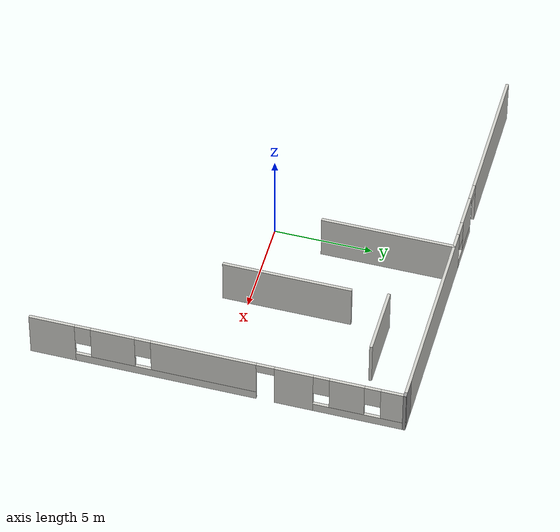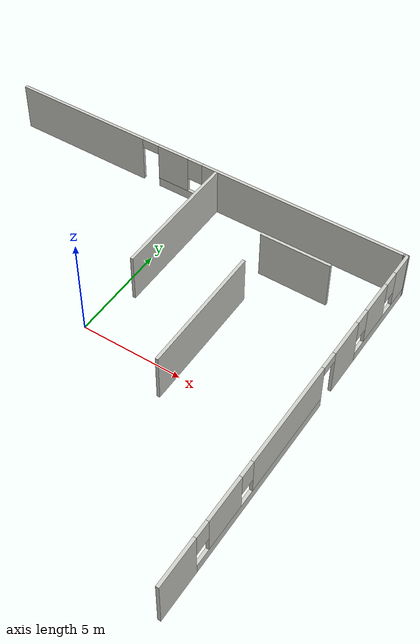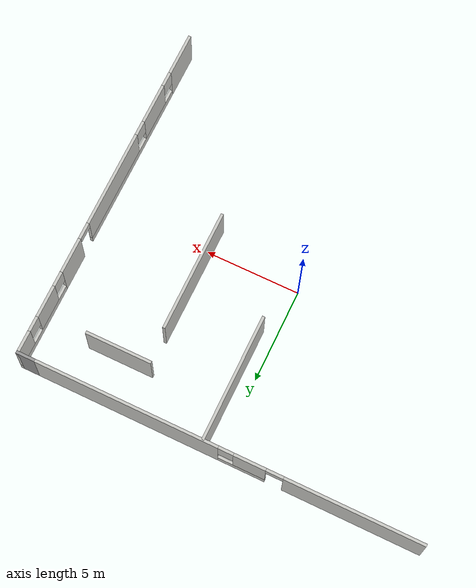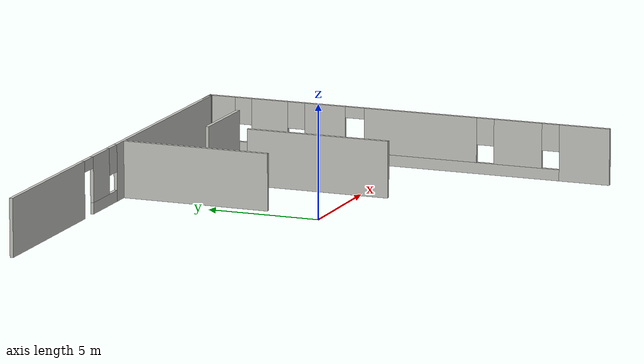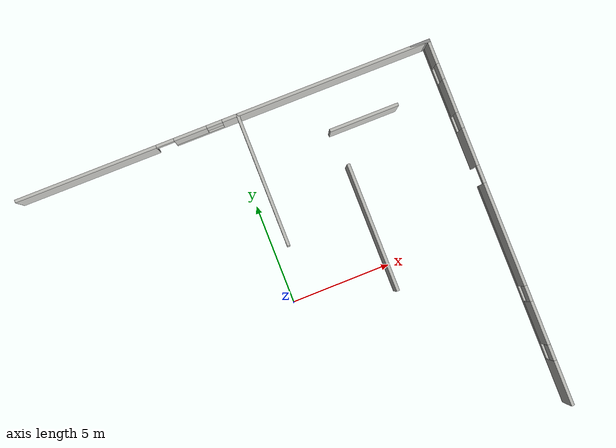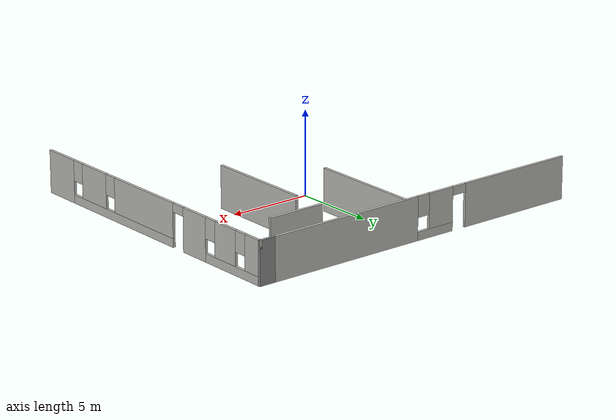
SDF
<sdf version="1.7">
 <model name="training_area">
  <link name="Wall_28">
   <pose>0.758252 5.97196 0 0 0 -1.5708</pose>
   <inertial>
    <mass>1</mass>
    <inertia><ixx>1</ixx><ixy>0</ixy><ixz>0</ixz><iyy>1</iyy><iyz>0</iyz><izz>1</izz></inertia>
   </inertial>
   <visual name="Wall_28_Visual">
    <pose>0 0 1.25 0 -0 0</pose>
    <geometry><box><size>6.75 0.15 2.5</size></box></geometry>
    <material>
     <script><uri>file://media/materials/scripts/gazebo.material</uri><name>Gazebo/CeilingTiled</name></script>
     <ambient>0.135 0.396 0.9 1</ambient>
     <shader type="pixel"><normal_map>__default__</normal_map></shader>
     <diffuse>1 1 1 1</diffuse>
     <specular>0 0 0 1</specular>
     <emissive>0 0 0 1</emissive>
    </material>
    <meta><layer>0</layer></meta>
   </visual>
   <collision name="Wall_28_Collision">
    <pose>0 0 1.25 0 -0 0</pose>
    <geometry><box><size>6.75 0.15 2.5</size></box></geometry>
    <surface>
     <friction>
      <ode><mu>1</mu><mu2>1</mu2><fdir1>0 0 0</fdir1><slip1>0</slip1><slip2>0</slip2></ode>
      <torsional>
       <coefficient>1</coefficient>
       <patch_radius>0</patch_radius>
       <surface_radius>0</surface_radius>
       <use_patch_radius>1</use_patch_radius>
       <ode><slip>0</slip></ode>
      </torsional>
     </friction>
     <bounce><restitution_coefficient>0</restitution_coefficient><threshold>1e+06</threshold></bounce>
     <contact>
      <collide_without_contact>0</collide_without_contact>
      <collide_without_contact_bitmask>1</collide_without_contact_bitmask>
      <collide_bitmask>1</collide_bitmask>
      <ode>
       <soft_cfm>0</soft_cfm>
       <soft_erp>0.2</soft_erp>
       <kp>1e+13</kp>
       <kd>1</kd>
       <max_vel>0.01</max_vel>
       <min_depth>0</min_depth>
      </ode>
      <bullet>
       <split_impulse>1</split_impulse>
       <split_impulse_penetration_threshold>-0.01</split_impulse_penetration_threshold>
       <soft_cfm>0</soft_cfm>
       <soft_erp>0.2</soft_erp>
       <kp>1e+13</kp>
       <kd>1</kd>
      </bullet>
     </contact>
    </surface>
   </collision>
  </link>
  <link name="Wall_3">
   <pose>-0.13 9.3 0 0 -0 3.14159</pose>
   <inertial>
    <mass>1</mass>
    <inertia><ixx>1</ixx><ixy>0</ixy><ixz>0</ixz><iyy>1</iyy><iyz>0</iyz><izz>1</izz></inertia>
   </inertial>
   <visual name="Wall_3_Visual_0">
    <pose>-5.29204 0 1.25 0 -0 0</pose>
    <geometry><box><size>10.4159 0.15 2.5</size></box></geometry>
    <material>
     <script><uri>file://media/materials/scripts/gazebo.material</uri><name>Gazebo/CeilingTiled</name></script>
     <ambient>0.8 0.965 0.106 1</ambient>
     <shader type="pixel"><normal_map>__default__</normal_map></shader>
     <diffuse>1 1 1 1</diffuse>
     <specular>0 0 0 1</specular>
     <emissive>0 0 0 1</emissive>
    </material>
    <meta><layer>0</layer></meta>
   </visual>
   <visual name="Wall_3_Visual_1">
    <pose>6.89421 0 1.25 0 -0 0</pose>
    <geometry><box><size>7.21159 0.15 2.5</size></box></geometry>
    <material>
     <script><uri>file://media/materials/scripts/gazebo.material</uri><name>Gazebo/CeilingTiled</name></script>
     <ambient>0.6 0.965 0.206 1</ambient>
     <shader type="pixel"><normal_map>__default__</normal_map></shader>
     <diffuse>1 1 1 1</diffuse>
     <specular>0 0 0 1</specular>
     <emissive>0 0 0 1</emissive>
    </material>
    <meta><layer>0</layer></meta>
   </visual>
   <visual name="Wall_3_Visual_3">
    <pose>1.55217 0 1.5 0 -0 0</pose>
    <geometry><box><size>1.67249 0.15 2</size></box></geometry>
    <material>
     <script><uri>file://media/materials/scripts/gazebo.material</uri><name>Gazebo/CeilingTiled</name></script>
     <ambient>0.3 1 0.406 1</ambient>
     <shader type="pixel"><normal_map>__default__</normal_map></shader>
     <diffuse>1 1 1 1</diffuse>
     <specular>0 0 0 1</specular>
     <emissive>0 0 0 1</emissive>
    </material>
    <meta><layer>0</layer></meta>
   </visual>
   <visual name="Wall_3_Visual_5">
    <pose>2.83841 0 2.25 0 -0 0</pose>
    <geometry><box><size>0.9 0.15 0.5</size></box></geometry>
    <material>
     <script><uri>file://media/materials/scripts/gazebo.material</uri><name>Gazebo/CeilingTiled</name></script>
     <ambient>0.8 0.965 0.606 1</ambient>
     <shader type="pixel"><normal_map>__default__</normal_map></shader>
     <diffuse>1 1 1 1</diffuse>
     <specular>0 0 0 1</specular>
     <emissive>0 0 0 1</emissive>
    </material>
    <meta><layer>0</layer></meta>
   </visual>
   <visual name="Wall_3_Visual_4">
    <pose>0.315921 0 1.9 0 -0 0</pose>
    <geometry><box><size>0.8 0.15 1.2</size></box></geometry>
    <material>
     <script><uri>file://media/materials/scripts/gazebo.material</uri><name>Gazebo/CeilingTiled</name></script>
     <ambient>0.6 0.765 0.506 1</ambient>
     <shader type="pixel"><normal_map>__default__</normal_map></shader>
     <diffuse>1 1 1 1</diffuse>
     <specular>0 0 0 1</specular>
     <emissive>0 0 0 1</emissive>
    </material>
    <meta><layer>0</layer></meta>
   </visual>
   <visual name="Wall_3_Visual_2">
    <pose>1.15217 0 0.25 0 -0 0</pose>
    <geometry><box><size>2.47249 0.15 0.5</size></box></geometry>
    <material>
     <script><uri>file://media/materials/scripts/gazebo.material</uri><name>Gazebo/CeilingTiled</name></script>
     <ambient>0.7 1 0.506 1</ambient>
     <shader type="pixel"><normal_map>__default__</normal_map></shader>
     <diffuse>1 1 1 1</diffuse>
     <specular>0 0 0 1</specular>
     <emissive>0 0 0 1</emissive>
    </material>
    <meta><layer>0</layer></meta>
   </visual>
   <collision name="Wall_3_Collision_5">
    <pose>2.83841 0 2.25 0 -0 0</pose>
    <geometry><box><size>0.9 0.15 0.5</size></box></geometry>
    <surface>
     <friction>
      <ode><mu>1</mu><mu2>1</mu2><fdir1>0 0 0</fdir1><slip1>0</slip1><slip2>0</slip2></ode>
      <torsional>
       <coefficient>1</coefficient>
       <patch_radius>0</patch_radius>
       <surface_radius>0</surface_radius>
       <use_patch_radius>1</use_patch_radius>
       <ode><slip>0</slip></ode>
      </torsional>
     </friction>
     <bounce><restitution_coefficient>0</restitution_coefficient><threshold>1e+06</threshold></bounce>
     <contact>
      <collide_without_contact>0</collide_without_contact>
      <collide_without_contact_bitmask>1</collide_without_contact_bitmask>
      <collide_bitmask>1</collide_bitmask>
      <ode>
       <soft_cfm>0</soft_cfm>
       <soft_erp>0.2</soft_erp>
       <kp>1e+13</kp>
       <kd>1</kd>
       <max_vel>0.01</max_vel>
       <min_depth>0</min_depth>
      </ode>
      <bullet>
       <split_impulse>1</split_impulse>
       <split_impulse_penetration_threshold>-0.01</split_impulse_penetration_threshold>
       <soft_cfm>0</soft_cfm>
       <soft_erp>0.2</soft_erp>
       <kp>1e+13</kp>
       <kd>1</kd>
      </bullet>
     </contact>
    </surface>
   </collision>
   <collision name="Wall_3_Collision_0">
    <pose>-5.29204 0 1.25 0 -0 0</pose>
    <geometry><box><size>10.4159 0.15 2.5</size></box></geometry>
    <surface>
     <friction>
      <ode><mu>1</mu><mu2>1</mu2><fdir1>0 0 0</fdir1><slip1>0</slip1><slip2>0</slip2></ode>
      <torsional>
       <coefficient>1</coefficient>
       <patch_radius>0</patch_radius>
       <surface_radius>0</surface_radius>
       <use_patch_radius>1</use_patch_radius>
       <ode><slip>0</slip></ode>
      </torsional>
     </friction>
     <bounce><restitution_coefficient>0</restitution_coefficient><threshold>1e+06</threshold></bounce>
     <contact>
      <collide_without_contact>0</collide_without_contact>
      <collide_without_contact_bitmask>1</collide_without_contact_bitmask>
      <collide_bitmask>1</collide_bitmask>
      <ode>
       <soft_cfm>0</soft_cfm>
       <soft_erp>0.2</soft_erp>
       <kp>1e+13</kp>
       <kd>1</kd>
       <max_vel>0.01</max_vel>
       <min_depth>0</min_depth>
      </ode>
      <bullet>
       <split_impulse>1</split_impulse>
       <split_impulse_penetration_threshold>-0.01</split_impulse_penetration_threshold>
       <soft_cfm>0</soft_cfm>
       <soft_erp>0.2</soft_erp>
       <kp>1e+13</kp>
       <kd>1</kd>
      </bullet>
     </contact>
    </surface>
   </collision>
   <collision name="Wall_3_Collision_4">
    <pose>0.315921 0 1.9 0 -0 0</pose>
    <geometry><box><size>0.8 0.15 1.2</size></box></geometry>
    <surface>
     <friction>
      <ode><mu>1</mu><mu2>1</mu2><fdir1>0 0 0</fdir1><slip1>0</slip1><slip2>0</slip2></ode>
      <torsional>
       <coefficient>1</coefficient>
       <patch_radius>0</patch_radius>
       <surface_radius>0</surface_radius>
       <use_patch_radius>1</use_patch_radius>
       <ode><slip>0</slip></ode>
      </torsional>
     </friction>
     <bounce><restitution_coefficient>0</restitution_coefficient><threshold>1e+06</threshold></bounce>
     <contact>
      <collide_without_contact>0</collide_without_contact>
      <collide_without_contact_bitmask>1</collide_without_contact_bitmask>
      <collide_bitmask>1</collide_bitmask>
      <ode>
       <soft_cfm>0</soft_cfm>
       <soft_erp>0.2</soft_erp>
       <kp>1e+13</kp>
       <kd>1</kd>
       <max_vel>0.01</max_vel>
       <min_depth>0</min_depth>
      </ode>
      <bullet>
       <split_impulse>1</split_impulse>
       <split_impulse_penetration_threshold>-0.01</split_impulse_penetration_threshold>
       <soft_cfm>0</soft_cfm>
       <soft_erp>0.2</soft_erp>
       <kp>1e+13</kp>
       <kd>1</kd>
      </bullet>
     </contact>
    </surface>
   </collision>
   <collision name="Wall_3_Collision_1">
    <pose>6.89421 0 1.25 0 -0 0</pose>
    <geometry><box><size>7.21159 0.15 2.5</size></box></geometry>
    <surface>
     <friction>
      <ode><mu>1</mu><mu2>1</mu2><fdir1>0 0 0</fdir1><slip1>0</slip1><slip2>0</slip2></ode>
      <torsional>
       <coefficient>1</coefficient>
       <patch_radius>0</patch_radius>
       <surface_radius>0</surface_radius>
       <use_patch_radius>1</use_patch_radius>
       <ode><slip>0</slip></ode>
      </torsional>
     </friction>
     <bounce><restitution_coefficient>0</restitution_coefficient><threshold>1e+06</threshold></bounce>
     <contact>
      <collide_without_contact>0</collide_without_contact>
      <collide_without_contact_bitmask>1</collide_without_contact_bitmask>
      <collide_bitmask>1</collide_bitmask>
      <ode>
       <soft_cfm>0</soft_cfm>
       <soft_erp>0.2</soft_erp>
       <kp>1e+13</kp>
       <kd>1</kd>
       <max_vel>0.01</max_vel>
       <min_depth>0</min_depth>
      </ode>
      <bullet>
       <split_impulse>1</split_impulse>
       <split_impulse_penetration_threshold>-0.01</split_impulse_penetration_threshold>
       <soft_cfm>0</soft_cfm>
       <soft_erp>0.2</soft_erp>
       <kp>1e+13</kp>
       <kd>1</kd>
      </bullet>
     </contact>
    </surface>
   </collision>
   <collision name="Wall_3_Collision_2">
    <pose>1.15217 0 0.25 0 -0 0</pose>
    <geometry><box><size>2.47249 0.15 0.5</size></box></geometry>
    <surface>
     <friction>
      <ode><mu>1</mu><mu2>1</mu2><fdir1>0 0 0</fdir1><slip1>0</slip1><slip2>0</slip2></ode>
      <torsional>
       <coefficient>1</coefficient>
       <patch_radius>0</patch_radius>
       <surface_radius>0</surface_radius>
       <use_patch_radius>1</use_patch_radius>
       <ode><slip>0</slip></ode>
      </torsional>
     </friction>
     <bounce><restitution_coefficient>0</restitution_coefficient><threshold>1e+06</threshold></bounce>
     <contact>
      <collide_without_contact>0</collide_without_contact>
      <collide_without_contact_bitmask>1</collide_without_contact_bitmask>
      <collide_bitmask>1</collide_bitmask>
      <ode>
       <soft_cfm>0</soft_cfm>
       <soft_erp>0.2</soft_erp>
       <kp>1e+13</kp>
       <kd>1</kd>
       <max_vel>0.01</max_vel>
       <min_depth>0</min_depth>
      </ode>
      <bullet>
       <split_impulse>1</split_impulse>
       <split_impulse_penetration_threshold>-0.01</split_impulse_penetration_threshold>
       <soft_cfm>0</soft_cfm>
       <soft_erp>0.2</soft_erp>
       <kp>1e+13</kp>
       <kd>1</kd>
      </bullet>
     </contact>
    </surface>
   </collision>
   <collision name="Wall_3_Collision_3">
    <pose>1.55217 0 1.5 0 -0 0</pose>
    <geometry><box><size>1.67249 0.15 2</size></box></geometry>
    <surface>
     <friction>
      <ode><mu>1</mu><mu2>1</mu2><fdir1>0 0 0</fdir1><slip1>0</slip1><slip2>0</slip2></ode>
      <torsional>
       <coefficient>1</coefficient>
       <patch_radius>0</patch_radius>
       <surface_radius>0</surface_radius>
       <use_patch_radius>1</use_patch_radius>
       <ode><slip>0</slip></ode>
      </torsional>
     </friction>
     <bounce><restitution_coefficient>0</restitution_coefficient><threshold>1e+06</threshold></bounce>
     <contact>
      <collide_without_contact>0</collide_without_contact>
      <collide_without_contact_bitmask>1</collide_without_contact_bitmask>
      <collide_bitmask>1</collide_bitmask>
      <ode>
       <soft_cfm>0</soft_cfm>
       <soft_erp>0.2</soft_erp>
       <kp>1e+13</kp>
       <kd>1</kd>
       <max_vel>0.01</max_vel>
       <min_depth>0</min_depth>
      </ode>
      <bullet>
       <split_impulse>1</split_impulse>
       <split_impulse_penetration_threshold>-0.01</split_impulse_penetration_threshold>
       <soft_cfm>0</soft_cfm>
       <soft_erp>0.2</soft_erp>
       <kp>1e+13</kp>
       <kd>1</kd>
      </bullet>
     </contact>
    </surface>
   </collision>
  </link>
  <link name="Wall_30">
   <pose>6.33904 6.99359 0 0 -0 0</pose>
   <visual name="Wall_30_Visual">
    <pose>0 0 1.25 0 -0 0</pose>
    <geometry><box><size>3.5 0.15 2.5</size></box></geometry>
    <material>
     <script><uri>file://media/materials/scripts/gazebo.material</uri><name>Gazebo/CeilingTiled</name></script>
     <ambient>0.435294 0.796078 0.67451 1</ambient>
     <shader type="pixel"/>
    </material>
    <meta><layer>0</layer></meta>
   </visual>
   <collision name="Wall_30_Collision">
    <pose>0 0 1.25 0 -0 0</pose>
    <geometry><box><size>3.5 0.15 2.5</size></box></geometry>
    <surface>
     <friction>
      <ode><mu>1</mu><mu2>1</mu2><fdir1>0 0 0</fdir1><slip1>0</slip1><slip2>0</slip2></ode>
      <torsional>
       <coefficient>1</coefficient>
       <patch_radius>0</patch_radius>
       <surface_radius>0</surface_radius>
       <use_patch_radius>1</use_patch_radius>
       <ode><slip>0</slip></ode>
      </torsional>
     </friction>
     <bounce><restitution_coefficient>0</restitution_coefficient><threshold>1e+06</threshold></bounce>
     <contact>
      <collide_without_contact>0</collide_without_contact>
      <collide_without_contact_bitmask>1</collide_without_contact_bitmask>
      <collide_bitmask>1</collide_bitmask>
      <ode>
       <soft_cfm>0</soft_cfm>
       <soft_erp>0.2</soft_erp>
       <kp>1e+13</kp>
       <kd>1</kd>
       <max_vel>0.01</max_vel>
       <min_depth>0</min_depth>
      </ode>
      <bullet>
       <split_impulse>1</split_impulse>
       <split_impulse_penetration_threshold>-0.01</split_impulse_penetration_threshold>
       <soft_cfm>0</soft_cfm>
       <soft_erp>0.2</soft_erp>
       <kp>1e+13</kp>
       <kd>1</kd>
      </bullet>
     </contact>
    </surface>
   </collision>
  </link>
  <link name="Wall_32">
   <pose>4.82678 1.94706 0 0 0 -1.5708</pose>
   <inertial>
    <mass>1</mass>
    <inertia><ixx>1</ixx><ixy>0</ixy><ixz>0</ixz><iyy>1</iyy><iyz>0</iyz><izz>1</izz></inertia>
   </inertial>
   <visual name="Wall_32_Visual">
    <pose>0 0 1.25 0 -0 0</pose>
    <geometry><box><size>6.5 0.15 2.5</size></box></geometry>
    <material>
     <script><uri>file://media/materials/scripts/gazebo.material</uri><name>Gazebo/CeilingTiled</name></script>
     <ambient>0.835 0.396 0.375 1</ambient>
     <shader type="pixel"><normal_map>__default__</normal_map></shader>
     <diffuse>1 1 1 1</diffuse>
     <specular>0 0 0 1</specular>
     <emissive>0 0 0 1</emissive>
    </material>
    <meta><layer>0</layer></meta>
   </visual>
   <collision name="Wall_32_Collision">
    <pose>0 0 1.25 0 -0 0</pose>
    <geometry><box><size>6.5 0.15 2.5</size></box></geometry>
    <surface>
     <friction>
      <ode><mu>1</mu><mu2>1</mu2><fdir1>0 0 0</fdir1><slip1>0</slip1><slip2>0</slip2></ode>
      <torsional>
       <coefficient>1</coefficient>
       <patch_radius>0</patch_radius>
       <surface_radius>0</surface_radius>
       <use_patch_radius>1</use_patch_radius>
       <ode><slip>0</slip></ode>
      </torsional>
     </friction>
     <bounce><restitution_coefficient>0</restitution_coefficient><threshold>1e+06</threshold></bounce>
     <contact>
      <collide_without_contact>0</collide_without_contact>
      <collide_without_contact_bitmask>1</collide_without_contact_bitmask>
      <collide_bitmask>1</collide_bitmask>
      <ode>
       <soft_cfm>0</soft_cfm>
       <soft_erp>0.2</soft_erp>
       <kp>1e+13</kp>
       <kd>1</kd>
       <max_vel>0.01</max_vel>
       <min_depth>0</min_depth>
      </ode>
      <bullet>
       <split_impulse>1</split_impulse>
       <split_impulse_penetration_threshold>-0.01</split_impulse_penetration_threshold>
       <soft_cfm>0</soft_cfm>
       <soft_erp>0.2</soft_erp>
       <kp>1e+13</kp>
       <kd>1</kd>
      </bullet>
     </contact>
    </surface>
   </collision>
  </link>
  <link name="Wall_7">
   <pose>10.555 0 0 0 -0 1.5708</pose>
   <inertial>
    <mass>1</mass>
    <inertia><ixx>1</ixx><ixy>0</ixy><ixz>0</ixz><iyy>1</iyy><iyz>0</iyz><izz>1</izz></inertia>
   </inertial>
   <visual name="Wall_7_Visual_2">
    <pose>-2.54492 0 0.25 0 -0 0</pose>
    <geometry><box><size>9.06351 0.15 0.5</size></box></geometry>
    <material>
     <script><uri>file://media/materials/scripts/gazebo.material</uri><name>Gazebo/CeilingTiled</name></script>
     <ambient>0.1 0.9 0.906 1</ambient>
     <shader type="pixel"><normal_map>__default__</normal_map></shader>
     <diffuse>1 1 1 1</diffuse>
     <specular>0 0 0 1</specular>
     <emissive>0 0 0 1</emissive>
    </material>
    <meta><layer>0</layer></meta>
   </visual>
   <visual name="Wall_7_Visual_12">
    <pose>7.72592 0 1.9 0 -0 0</pose>
    <geometry><box><size>0.8 0.15 1.2</size></box></geometry>
    <material>
     <script><uri>file://media/materials/scripts/gazebo.material</uri><name>Gazebo/CeilingTiled</name></script>
     <ambient>0.4 1 0.106 1</ambient>
     <shader type="pixel"><normal_map>__default__</normal_map></shader>
     <diffuse>1 1 1 1</diffuse>
     <specular>0 0 0 1</specular>
     <emissive>0 0 0 1</emissive>
    </material>
    <meta><layer>0</layer></meta>
   </visual>
   <visual name="Wall_7_Visual_11">
    <pose>-3.66596 0 1.9 0 -0 0</pose>
    <geometry><box><size>0.8 0.15 1.2</size></box></geometry>
    <material>
     <script><uri>file://media/materials/scripts/gazebo.material</uri><name>Gazebo/CeilingTiled</name></script>
     <ambient>0.5 0.465 0.106 1</ambient>
     <shader type="pixel"><normal_map>__default__</normal_map></shader>
     <diffuse>1 1 1 1</diffuse>
     <specular>0 0 0 1</specular>
     <emissive>0 0 0 1</emissive>
    </material>
    <meta><layer>0</layer></meta>
   </visual>
   <visual name="Wall_7_Visual_6">
    <pose>-0.639567 0 1.5 0 -0 0</pose>
    <geometry><box><size>5.2528 0.15 2</size></box></geometry>
    <material>
     <script><uri>file://media/materials/scripts/gazebo.material</uri><name>Gazebo/CeilingTiled</name></script>
     <ambient>0.2 0.765 0.206 1</ambient>
     <shader type="pixel"><normal_map>__default__</normal_map></shader>
     <diffuse>1 1 1 1</diffuse>
     <specular>0 0 0 1</specular>
     <emissive>0 0 0 1</emissive>
    </material>
    <meta><layer>0</layer></meta>
   </visual>
   <visual name="Wall_7_Visual_1">
    <pose>3.84513 0 1.25 0 -0 0</pose>
    <geometry><box><size>1.9166 0.15 2.5</size></box></geometry>
    <material>
     <script><uri>file://media/materials/scripts/gazebo.material</uri><name>Gazebo/CeilingTiled</name></script>
     <ambient>0.9 0.9 0.106 1</ambient>
     <shader type="pixel"><normal_map>__default__</normal_map></shader>
     <diffuse>1 1 1 1</diffuse>
     <specular>0 0 0 1</specular>
     <emissive>0 0 0 1</emissive>
    </material>
    <meta><layer>0</layer></meta>
   </visual>
   <visual name="Wall_7_Visual_14">
    <pose>2.43683 0 2.25 0 -0 0</pose>
    <geometry><box><size>0.9 0.15 0.5</size></box></geometry>
    <material>
     <script><uri>file://media/materials/scripts/gazebo.material</uri><name>Gazebo/CeilingTiled</name></script>
     <ambient>0.9 0.465 0.806 1</ambient>
     <shader type="pixel"><normal_map>__default__</normal_map></shader>
     <diffuse>1 1 1 1</diffuse>
     <specular>0 0 0 1</specular>
     <emissive>0 0 0 1</emissive>
    </material>
    <meta><layer>0</layer></meta>
   </visual>
   <visual name="Wall_7_Visual_8">
    <pose>8.75046 0 1.5 0 -0 0</pose>
    <geometry><box><size>1.24908 0.15 2</size></box></geometry>
    <material>
     <script><uri>file://media/materials/scripts/gazebo.material</uri><name>Gazebo/CeilingTiled</name></script>
     <ambient>0.6 1 0.606 1</ambient>
     <shader type="pixel"><normal_map>__default__</normal_map></shader>
     <diffuse>1 1 1 1</diffuse>
     <specular>0 0 0 1</specular>
     <emissive>0 0 0 1</emissive>
    </material>
    <meta><layer>0</layer></meta>
   </visual>
   <visual name="Wall_7_Visual_13">
    <pose>2.43683 0 2.25 0 -0 0</pose>
    <geometry><box><size>0.9 0.15 0.5</size></box></geometry>
    <material>
     <script><uri>file://media/materials/scripts/gazebo.material</uri><name>Gazebo/CeilingTiled</name></script>
     <ambient>0.7 0.965 0.706 1</ambient>
     <shader type="pixel"><normal_map>__default__</normal_map></shader>
     <diffuse>1 1 1 1</diffuse>
     <specular>0 0 0 1</specular>
     <emissive>0 0 0 1</emissive>
    </material>
    <meta><layer>0</layer></meta>
   </visual>
   <visual name="Wall_7_Visual_10">
    <pose>5.20343 0 1.9 0 -0 0</pose>
    <geometry><box><size>0.8 0.15 1.2</size></box></geometry>
    <material>
     <script><uri>file://media/materials/scripts/gazebo.material</uri><name>Gazebo/CeilingTiled</name></script>
     <ambient>0.6 0.265 0.806 1</ambient>
     <shader type="pixel"><normal_map>__default__</normal_map></shader>
     <diffuse>1 1 1 1</diffuse>
     <specular>0 0 0 1</specular>
     <emissive>0 0 0 1</emissive>
    </material>
    <meta><layer>0</layer></meta>
   </visual>
   <visual name="Wall_7_Visual_4">
    <pose>-5.17132 0 1.5 0 -0 0</pose>
    <geometry><box><size>2.21071 0.15 2</size></box></geometry>
    <material>
     <script><uri>file://media/materials/scripts/gazebo.material</uri><name>Gazebo/CeilingTiled</name></script>
     <ambient>0.5 0.765 0.706 1</ambient>
     <shader type="pixel"><normal_map>__default__</normal_map></shader>
     <diffuse>1 1 1 1</diffuse>
     <specular>0 0 0 1</specular>
     <emissive>0 0 0 1</emissive>
    </material>
    <meta><layer>0</layer></meta>
   </visual>
   <visual name="Wall_7_Visual_9">
    <pose>-6.67668 0 1.9 0 -0 0</pose>
    <geometry><box><size>0.8 0.15 1.2</size></box></geometry>
    <material>
     <script><uri>file://media/materials/scripts/gazebo.material</uri><name>Gazebo/CeilingTiled</name></script>
     <ambient>0.6 0.965 0.206 1</ambient>
     <shader type="pixel"><normal_map>__default__</normal_map></shader>
     <diffuse>1 1 1 1</diffuse>
     <specular>0 0 0 1</specular>
     <emissive>0 0 0 1</emissive>
    </material>
    <meta><layer>0</layer></meta>
   </visual>
   <visual name="Wall_7_Visual_7">
    <pose>6.46468 0 1.5 0 -0 0</pose>
    <geometry><box><size>1.72249 0.15 2</size></box></geometry>
    <material>
     <script><uri>file://media/materials/scripts/gazebo.material</uri><name>Gazebo/CeilingTiled</name></script>
     <ambient>0.8 0.3 0.306 1</ambient>
     <shader type="pixel"><normal_map>__default__</normal_map></shader>
     <diffuse>1 1 1 1</diffuse>
     <specular>0 0 0 1</specular>
     <emissive>0 0 0 1</emissive>
    </material>
    <meta><layer>0</layer></meta>
   </visual>
   <visual name="Wall_7_Visual_0">
    <pose>-8.22584 0 1.25 0 -0 0</pose>
    <geometry><box><size>2.29832 0.15 2.5</size></box></geometry>
    <material>
     <script><uri>file://media/materials/scripts/gazebo.material</uri><name>Gazebo/CeilingTiled</name></script>
     <ambient>0.9 0.1 0.9 1</ambient>
     <shader type="pixel"><normal_map>__default__</normal_map></shader>
     <diffuse>1 1 1 1</diffuse>
     <specular>0 0 0 1</specular>
     <emissive>0 0 0 1</emissive>
    </material>
    <meta><layer>0</layer></meta>
   </visual>
   <visual name="Wall_7_Visual_3">
    <pose>7.08922 0 0.25 0 -0 0</pose>
    <geometry><box><size>4.57157 0.15 0.5</size></box></geometry>
    <material>
     <script><uri>file://media/materials/scripts/gazebo.material</uri><name>Gazebo/CeilingTiled</name></script>
     <ambient>0.9 0.265 0.906 1</ambient>
     <shader type="pixel"><normal_map>__default__</normal_map></shader>
     <diffuse>1 1 1 1</diffuse>
     <specular>0 0 0 1</specular>
     <emissive>0 0 0 1</emissive>
    </material>
    <meta><layer>0</layer></meta>
   </visual>
   <visual name="Wall_7_Visual_5">
    <pose>-0.639567 0 1.5 0 -0 0</pose>
    <geometry><box><size>5.2528 0.15 2</size></box></geometry>
    <material>
     <script><uri>file://media/materials/scripts/gazebo.material</uri><name>Gazebo/CeilingTiled</name></script>
     <ambient>1 0.065 0.806 1</ambient>
     <shader type="pixel"><normal_map>__default__</normal_map></shader>
     <diffuse>1 1 1 1</diffuse>
     <specular>0 0 0 1</specular>
     <emissive>0 0 0 1</emissive>
    </material>
    <meta><layer>0</layer></meta>
   </visual>
   <collision name="Wall_7_Collision_6">
    <pose>-0.639567 0 1.5 0 -0 0</pose>
    <geometry><box><size>5.2528 0.15 2</size></box></geometry>
    <surface>
     <friction>
      <ode><mu>1</mu><mu2>1</mu2><fdir1>0 0 0</fdir1><slip1>0</slip1><slip2>0</slip2></ode>
      <torsional>
       <coefficient>1</coefficient>
       <patch_radius>0</patch_radius>
       <surface_radius>0</surface_radius>
       <use_patch_radius>1</use_patch_radius>
       <ode><slip>0</slip></ode>
      </torsional>
     </friction>
     <bounce><restitution_coefficient>0</restitution_coefficient><threshold>1e+06</threshold></bounce>
     <contact>
      <collide_without_contact>0</collide_without_contact>
      <collide_without_contact_bitmask>1</collide_without_contact_bitmask>
      <collide_bitmask>1</collide_bitmask>
      <ode>
       <soft_cfm>0</soft_cfm>
       <soft_erp>0.2</soft_erp>
       <kp>1e+13</kp>
       <kd>1</kd>
       <max_vel>0.01</max_vel>
       <min_depth>0</min_depth>
      </ode>
      <bullet>
       <split_impulse>1</split_impulse>
       <split_impulse_penetration_threshold>-0.01</split_impulse_penetration_threshold>
       <soft_cfm>0</soft_cfm>
       <soft_erp>0.2</soft_erp>
       <kp>1e+13</kp>
       <kd>1</kd>
      </bullet>
     </contact>
    </surface>
   </collision>
   <collision name="Wall_7_Collision_2">
    <pose>-2.54492 0 0.25 0 -0 0</pose>
    <geometry><box><size>9.06351 0.15 0.5</size></box></geometry>
    <surface>
     <friction>
      <ode><mu>1</mu><mu2>1</mu2><fdir1>0 0 0</fdir1><slip1>0</slip1><slip2>0</slip2></ode>
      <torsional>
       <coefficient>1</coefficient>
       <patch_radius>0</patch_radius>
       <surface_radius>0</surface_radius>
       <use_patch_radius>1</use_patch_radius>
       <ode><slip>0</slip></ode>
      </torsional>
     </friction>
     <bounce><restitution_coefficient>0</restitution_coefficient><threshold>1e+06</threshold></bounce>
     <contact>
      <collide_without_contact>0</collide_without_contact>
      <collide_without_contact_bitmask>1</collide_without_contact_bitmask>
      <collide_bitmask>1</collide_bitmask>
      <ode>
       <soft_cfm>0</soft_cfm>
       <soft_erp>0.2</soft_erp>
       <kp>1e+13</kp>
       <kd>1</kd>
       <max_vel>0.01</max_vel>
       <min_depth>0</min_depth>
      </ode>
      <bullet>
       <split_impulse>1</split_impulse>
       <split_impulse_penetration_threshold>-0.01</split_impulse_penetration_threshold>
       <soft_cfm>0</soft_cfm>
       <soft_erp>0.2</soft_erp>
       <kp>1e+13</kp>
       <kd>1</kd>
      </bullet>
     </contact>
    </surface>
   </collision>
   <collision name="Wall_7_Collision_7">
    <pose>6.46468 0 1.5 0 -0 0</pose>
    <geometry><box><size>1.72249 0.15 2</size></box></geometry>
    <surface>
     <friction>
      <ode><mu>1</mu><mu2>1</mu2><fdir1>0 0 0</fdir1><slip1>0</slip1><slip2>0</slip2></ode>
      <torsional>
       <coefficient>1</coefficient>
       <patch_radius>0</patch_radius>
       <surface_radius>0</surface_radius>
       <use_patch_radius>1</use_patch_radius>
       <ode><slip>0</slip></ode>
      </torsional>
     </friction>
     <bounce><restitution_coefficient>0</restitution_coefficient><threshold>1e+06</threshold></bounce>
     <contact>
      <collide_without_contact>0</collide_without_contact>
      <collide_without_contact_bitmask>1</collide_without_contact_bitmask>
      <collide_bitmask>1</collide_bitmask>
      <ode>
       <soft_cfm>0</soft_cfm>
       <soft_erp>0.2</soft_erp>
       <kp>1e+13</kp>
       <kd>1</kd>
       <max_vel>0.01</max_vel>
       <min_depth>0</min_depth>
      </ode>
      <bullet>
       <split_impulse>1</split_impulse>
       <split_impulse_penetration_threshold>-0.01</split_impulse_penetration_threshold>
       <soft_cfm>0</soft_cfm>
       <soft_erp>0.2</soft_erp>
       <kp>1e+13</kp>
       <kd>1</kd>
      </bullet>
     </contact>
    </surface>
   </collision>
   <collision name="Wall_7_Collision_3">
    <pose>7.08922 0 0.25 0 -0 0</pose>
    <geometry><box><size>4.57157 0.15 0.5</size></box></geometry>
    <surface>
     <friction>
      <ode><mu>1</mu><mu2>1</mu2><fdir1>0 0 0</fdir1><slip1>0</slip1><slip2>0</slip2></ode>
      <torsional>
       <coefficient>1</coefficient>
       <patch_radius>0</patch_radius>
       <surface_radius>0</surface_radius>
       <use_patch_radius>1</use_patch_radius>
       <ode><slip>0</slip></ode>
      </torsional>
     </friction>
     <bounce><restitution_coefficient>0</restitution_coefficient><threshold>1e+06</threshold></bounce>
     <contact>
      <collide_without_contact>0</collide_without_contact>
      <collide_without_contact_bitmask>1</collide_without_contact_bitmask>
      <collide_bitmask>1</collide_bitmask>
      <ode>
       <soft_cfm>0</soft_cfm>
       <soft_erp>0.2</soft_erp>
       <kp>1e+13</kp>
       <kd>1</kd>
       <max_vel>0.01</max_vel>
       <min_depth>0</min_depth>
      </ode>
      <bullet>
       <split_impulse>1</split_impulse>
       <split_impulse_penetration_threshold>-0.01</split_impulse_penetration_threshold>
       <soft_cfm>0</soft_cfm>
       <soft_erp>0.2</soft_erp>
       <kp>1e+13</kp>
       <kd>1</kd>
      </bullet>
     </contact>
    </surface>
   </collision>
   <collision name="Wall_7_Collision_5">
    <pose>-0.639567 0 1.5 0 -0 0</pose>
    <geometry><box><size>5.2528 0.15 2</size></box></geometry>
    <surface>
     <friction>
      <ode><mu>1</mu><mu2>1</mu2><fdir1>0 0 0</fdir1><slip1>0</slip1><slip2>0</slip2></ode>
      <torsional>
       <coefficient>1</coefficient>
       <patch_radius>0</patch_radius>
       <surface_radius>0</surface_radius>
       <use_patch_radius>1</use_patch_radius>
       <ode><slip>0</slip></ode>
      </torsional>
     </friction>
     <bounce><restitution_coefficient>0</restitution_coefficient><threshold>1e+06</threshold></bounce>
     <contact>
      <collide_without_contact>0</collide_without_contact>
      <collide_without_contact_bitmask>1</collide_without_contact_bitmask>
      <collide_bitmask>1</collide_bitmask>
      <ode>
       <soft_cfm>0</soft_cfm>
       <soft_erp>0.2</soft_erp>
       <kp>1e+13</kp>
       <kd>1</kd>
       <max_vel>0.01</max_vel>
       <min_depth>0</min_depth>
      </ode>
      <bullet>
       <split_impulse>1</split_impulse>
       <split_impulse_penetration_threshold>-0.01</split_impulse_penetration_threshold>
       <soft_cfm>0</soft_cfm>
       <soft_erp>0.2</soft_erp>
       <kp>1e+13</kp>
       <kd>1</kd>
      </bullet>
     </contact>
    </surface>
   </collision>
   <collision name="Wall_7_Collision_4">
    <pose>-5.17132 0 1.5 0 -0 0</pose>
    <geometry><box><size>2.21071 0.15 2</size></box></geometry>
    <surface>
     <friction>
      <ode><mu>1</mu><mu2>1</mu2><fdir1>0 0 0</fdir1><slip1>0</slip1><slip2>0</slip2></ode>
      <torsional>
       <coefficient>1</coefficient>
       <patch_radius>0</patch_radius>
       <surface_radius>0</surface_radius>
       <use_patch_radius>1</use_patch_radius>
       <ode><slip>0</slip></ode>
      </torsional>
     </friction>
     <bounce><restitution_coefficient>0</restitution_coefficient><threshold>1e+06</threshold></bounce>
     <contact>
      <collide_without_contact>0</collide_without_contact>
      <collide_without_contact_bitmask>1</collide_without_contact_bitmask>
      <collide_bitmask>1</collide_bitmask>
      <ode>
       <soft_cfm>0</soft_cfm>
       <soft_erp>0.2</soft_erp>
       <kp>1e+13</kp>
       <kd>1</kd>
       <max_vel>0.01</max_vel>
       <min_depth>0</min_depth>
      </ode>
      <bullet>
       <split_impulse>1</split_impulse>
       <split_impulse_penetration_threshold>-0.01</split_impulse_penetration_threshold>
       <soft_cfm>0</soft_cfm>
       <soft_erp>0.2</soft_erp>
       <kp>1e+13</kp>
       <kd>1</kd>
      </bullet>
     </contact>
    </surface>
   </collision>
   <collision name="Wall_7_Collision_12">
    <pose>7.72592 0 1.9 0 -0 0</pose>
    <geometry><box><size>0.8 0.15 1.2</size></box></geometry>
    <surface>
     <friction>
      <ode><mu>1</mu><mu2>1</mu2><fdir1>0 0 0</fdir1><slip1>0</slip1><slip2>0</slip2></ode>
      <torsional>
       <coefficient>1</coefficient>
       <patch_radius>0</patch_radius>
       <surface_radius>0</surface_radius>
       <use_patch_radius>1</use_patch_radius>
       <ode><slip>0</slip></ode>
      </torsional>
     </friction>
     <bounce><restitution_coefficient>0</restitution_coefficient><threshold>1e+06</threshold></bounce>
     <contact>
      <collide_without_contact>0</collide_without_contact>
      <collide_without_contact_bitmask>1</collide_without_contact_bitmask>
      <collide_bitmask>1</collide_bitmask>
      <ode>
       <soft_cfm>0</soft_cfm>
       <soft_erp>0.2</soft_erp>
       <kp>1e+13</kp>
       <kd>1</kd>
       <max_vel>0.01</max_vel>
       <min_depth>0</min_depth>
      </ode>
      <bullet>
       <split_impulse>1</split_impulse>
       <split_impulse_penetration_threshold>-0.01</split_impulse_penetration_threshold>
       <soft_cfm>0</soft_cfm>
       <soft_erp>0.2</soft_erp>
       <kp>1e+13</kp>
       <kd>1</kd>
      </bullet>
     </contact>
    </surface>
   </collision>
   <collision name="Wall_7_Collision_8">
    <pose>8.75046 0 1.5 0 -0 0</pose>
    <geometry><box><size>1.24908 0.15 2</size></box></geometry>
    <surface>
     <friction>
      <ode><mu>1</mu><mu2>1</mu2><fdir1>0 0 0</fdir1><slip1>0</slip1><slip2>0</slip2></ode>
      <torsional>
       <coefficient>1</coefficient>
       <patch_radius>0</patch_radius>
       <surface_radius>0</surface_radius>
       <use_patch_radius>1</use_patch_radius>
       <ode><slip>0</slip></ode>
      </torsional>
     </friction>
     <bounce><restitution_coefficient>0</restitution_coefficient><threshold>1e+06</threshold></bounce>
     <contact>
      <collide_without_contact>0</collide_without_contact>
      <collide_without_contact_bitmask>1</collide_without_contact_bitmask>
      <collide_bitmask>1</collide_bitmask>
      <ode>
       <soft_cfm>0</soft_cfm>
       <soft_erp>0.2</soft_erp>
       <kp>1e+13</kp>
       <kd>1</kd>
       <max_vel>0.01</max_vel>
       <min_depth>0</min_depth>
      </ode>
      <bullet>
       <split_impulse>1</split_impulse>
       <split_impulse_penetration_threshold>-0.01</split_impulse_penetration_threshold>
       <soft_cfm>0</soft_cfm>
       <soft_erp>0.2</soft_erp>
       <kp>1e+13</kp>
       <kd>1</kd>
      </bullet>
     </contact>
    </surface>
   </collision>
   <collision name="Wall_7_Collision_14">
    <pose>2.43683 0 2.25 0 -0 0</pose>
    <geometry><box><size>0.9 0.15 0.5</size></box></geometry>
    <surface>
     <friction>
      <ode><mu>1</mu><mu2>1</mu2><fdir1>0 0 0</fdir1><slip1>0</slip1><slip2>0</slip2></ode>
      <torsional>
       <coefficient>1</coefficient>
       <patch_radius>0</patch_radius>
       <surface_radius>0</surface_radius>
       <use_patch_radius>1</use_patch_radius>
       <ode><slip>0</slip></ode>
      </torsional>
     </friction>
     <bounce><restitution_coefficient>0</restitution_coefficient><threshold>1e+06</threshold></bounce>
     <contact>
      <collide_without_contact>0</collide_without_contact>
      <collide_without_contact_bitmask>1</collide_without_contact_bitmask>
      <collide_bitmask>1</collide_bitmask>
      <ode>
       <soft_cfm>0</soft_cfm>
       <soft_erp>0.2</soft_erp>
       <kp>1e+13</kp>
       <kd>1</kd>
       <max_vel>0.01</max_vel>
       <min_depth>0</min_depth>
      </ode>
      <bullet>
       <split_impulse>1</split_impulse>
       <split_impulse_penetration_threshold>-0.01</split_impulse_penetration_threshold>
       <soft_cfm>0</soft_cfm>
       <soft_erp>0.2</soft_erp>
       <kp>1e+13</kp>
       <kd>1</kd>
      </bullet>
     </contact>
    </surface>
   </collision>
   <collision name="Wall_7_Collision_9">
    <pose>-6.67668 0 1.9 0 -0 0</pose>
    <geometry><box><size>0.8 0.15 1.2</size></box></geometry>
    <surface>
     <friction>
      <ode><mu>1</mu><mu2>1</mu2><fdir1>0 0 0</fdir1><slip1>0</slip1><slip2>0</slip2></ode>
      <torsional>
       <coefficient>1</coefficient>
       <patch_radius>0</patch_radius>
       <surface_radius>0</surface_radius>
       <use_patch_radius>1</use_patch_radius>
       <ode><slip>0</slip></ode>
      </torsional>
     </friction>
     <bounce><restitution_coefficient>0</restitution_coefficient><threshold>1e+06</threshold></bounce>
     <contact>
      <collide_without_contact>0</collide_without_contact>
      <collide_without_contact_bitmask>1</collide_without_contact_bitmask>
      <collide_bitmask>1</collide_bitmask>
      <ode>
       <soft_cfm>0</soft_cfm>
       <soft_erp>0.2</soft_erp>
       <kp>1e+13</kp>
       <kd>1</kd>
       <max_vel>0.01</max_vel>
       <min_depth>0</min_depth>
      </ode>
      <bullet>
       <split_impulse>1</split_impulse>
       <split_impulse_penetration_threshold>-0.01</split_impulse_penetration_threshold>
       <soft_cfm>0</soft_cfm>
       <soft_erp>0.2</soft_erp>
       <kp>1e+13</kp>
       <kd>1</kd>
      </bullet>
     </contact>
    </surface>
   </collision>
   <collision name="Wall_7_Collision_1">
    <pose>3.84513 0 1.25 0 -0 0</pose>
    <geometry><box><size>1.9166 0.15 2.5</size></box></geometry>
    <surface>
     <friction>
      <ode><mu>1</mu><mu2>1</mu2><fdir1>0 0 0</fdir1><slip1>0</slip1><slip2>0</slip2></ode>
      <torsional>
       <coefficient>1</coefficient>
       <patch_radius>0</patch_radius>
       <surface_radius>0</surface_radius>
       <use_patch_radius>1</use_patch_radius>
       <ode><slip>0</slip></ode>
      </torsional>
     </friction>
     <bounce><restitution_coefficient>0</restitution_coefficient><threshold>1e+06</threshold></bounce>
     <contact>
      <collide_without_contact>0</collide_without_contact>
      <collide_without_contact_bitmask>1</collide_without_contact_bitmask>
      <collide_bitmask>1</collide_bitmask>
      <ode>
       <soft_cfm>0</soft_cfm>
       <soft_erp>0.2</soft_erp>
       <kp>1e+13</kp>
       <kd>1</kd>
       <max_vel>0.01</max_vel>
       <min_depth>0</min_depth>
      </ode>
      <bullet>
       <split_impulse>1</split_impulse>
       <split_impulse_penetration_threshold>-0.01</split_impulse_penetration_threshold>
       <soft_cfm>0</soft_cfm>
       <soft_erp>0.2</soft_erp>
       <kp>1e+13</kp>
       <kd>1</kd>
      </bullet>
     </contact>
    </surface>
   </collision>
   <collision name="Wall_7_Collision_11">
    <pose>-3.66596 0 1.9 0 -0 0</pose>
    <geometry><box><size>0.8 0.15 1.2</size></box></geometry>
    <surface>
     <friction>
      <ode><mu>1</mu><mu2>1</mu2><fdir1>0 0 0</fdir1><slip1>0</slip1><slip2>0</slip2></ode>
      <torsional>
       <coefficient>1</coefficient>
       <patch_radius>0</patch_radius>
       <surface_radius>0</surface_radius>
       <use_patch_radius>1</use_patch_radius>
       <ode><slip>0</slip></ode>
      </torsional>
     </friction>
     <bounce><restitution_coefficient>0</restitution_coefficient><threshold>1e+06</threshold></bounce>
     <contact>
      <collide_without_contact>0</collide_without_contact>
      <collide_without_contact_bitmask>1</collide_without_contact_bitmask>
      <collide_bitmask>1</collide_bitmask>
      <ode>
       <soft_cfm>0</soft_cfm>
       <soft_erp>0.2</soft_erp>
       <kp>1e+13</kp>
       <kd>1</kd>
       <max_vel>0.01</max_vel>
       <min_depth>0</min_depth>
      </ode>
      <bullet>
       <split_impulse>1</split_impulse>
       <split_impulse_penetration_threshold>-0.01</split_impulse_penetration_threshold>
       <soft_cfm>0</soft_cfm>
       <soft_erp>0.2</soft_erp>
       <kp>1e+13</kp>
       <kd>1</kd>
      </bullet>
     </contact>
    </surface>
   </collision>
   <collision name="Wall_7_Collision_0">
    <pose>-8.22584 0 1.25 0 -0 0</pose>
    <geometry><box><size>2.29832 0.15 2.5</size></box></geometry>
    <surface>
     <friction>
      <ode><mu>1</mu><mu2>1</mu2><fdir1>0 0 0</fdir1><slip1>0</slip1><slip2>0</slip2></ode>
      <torsional>
       <coefficient>1</coefficient>
       <patch_radius>0</patch_radius>
       <surface_radius>0</surface_radius>
       <use_patch_radius>1</use_patch_radius>
       <ode><slip>0</slip></ode>
      </torsional>
     </friction>
     <bounce><restitution_coefficient>0</restitution_coefficient><threshold>1e+06</threshold></bounce>
     <contact>
      <collide_without_contact>0</collide_without_contact>
      <collide_without_contact_bitmask>1</collide_without_contact_bitmask>
      <collide_bitmask>1</collide_bitmask>
      <ode>
       <soft_cfm>0</soft_cfm>
       <soft_erp>0.2</soft_erp>
       <kp>1e+13</kp>
       <kd>1</kd>
       <max_vel>0.01</max_vel>
       <min_depth>0</min_depth>
      </ode>
      <bullet>
       <split_impulse>1</split_impulse>
       <split_impulse_penetration_threshold>-0.01</split_impulse_penetration_threshold>
       <soft_cfm>0</soft_cfm>
       <soft_erp>0.2</soft_erp>
       <kp>1e+13</kp>
       <kd>1</kd>
      </bullet>
     </contact>
    </surface>
   </collision>
   <collision name="Wall_7_Collision_10">
    <pose>5.20343 0 1.9 0 -0 0</pose>
    <geometry><box><size>0.8 0.15 1.2</size></box></geometry>
    <surface>
     <friction>
      <ode><mu>1</mu><mu2>1</mu2><fdir1>0 0 0</fdir1><slip1>0</slip1><slip2>0</slip2></ode>
      <torsional>
       <coefficient>1</coefficient>
       <patch_radius>0</patch_radius>
       <surface_radius>0</surface_radius>
       <use_patch_radius>1</use_patch_radius>
       <ode><slip>0</slip></ode>
      </torsional>
     </friction>
     <bounce><restitution_coefficient>0</restitution_coefficient><threshold>1e+06</threshold></bounce>
     <contact>
      <collide_without_contact>0</collide_without_contact>
      <collide_without_contact_bitmask>1</collide_without_contact_bitmask>
      <collide_bitmask>1</collide_bitmask>
      <ode>
       <soft_cfm>0</soft_cfm>
       <soft_erp>0.2</soft_erp>
       <kp>1e+13</kp>
       <kd>1</kd>
       <max_vel>0.01</max_vel>
       <min_depth>0</min_depth>
      </ode>
      <bullet>
       <split_impulse>1</split_impulse>
       <split_impulse_penetration_threshold>-0.01</split_impulse_penetration_threshold>
       <soft_cfm>0</soft_cfm>
       <soft_erp>0.2</soft_erp>
       <kp>1e+13</kp>
       <kd>1</kd>
      </bullet>
     </contact>
    </surface>
   </collision>
   <collision name="Wall_7_Collision_13">
    <pose>2.43683 0 2.25 0 -0 0</pose>
    <geometry><box><size>0.9 0.15 0.5</size></box></geometry>
    <surface>
     <friction>
      <ode><mu>1</mu><mu2>1</mu2><fdir1>0 0 0</fdir1><slip1>0</slip1><slip2>0</slip2></ode>
      <torsional>
       <coefficient>1</coefficient>
       <patch_radius>0</patch_radius>
       <surface_radius>0</surface_radius>
       <use_patch_radius>1</use_patch_radius>
       <ode><slip>0</slip></ode>
      </torsional>
     </friction>
     <bounce><restitution_coefficient>0</restitution_coefficient><threshold>1e+06</threshold></bounce>
     <contact>
      <collide_without_contact>0</collide_without_contact>
      <collide_without_contact_bitmask>1</collide_without_contact_bitmask>
      <collide_bitmask>1</collide_bitmask>
      <ode>
       <soft_cfm>0</soft_cfm>
       <soft_erp>0.2</soft_erp>
       <kp>1e+13</kp>
       <kd>1</kd>
       <max_vel>0.01</max_vel>
       <min_depth>0</min_depth>
      </ode>
      <bullet>
       <split_impulse>1</split_impulse>
       <split_impulse_penetration_threshold>-0.01</split_impulse_penetration_threshold>
       <soft_cfm>0</soft_cfm>
       <soft_erp>0.2</soft_erp>
       <kp>1e+13</kp>
       <kd>1</kd>
      </bullet>
     </contact>
    </surface>
   </collision>
  </link>
  <link name="Wall_8">
   <pose>10.13 9.3 0 0 -0 3.14159</pose>
   <visual name="Wall_8_Visual">
    <pose>0 0 1.25 0 -0 0</pose>
    <geometry><box><size>1 0.15 2.5</size></box></geometry>
    <material>
     <script><uri>file://media/materials/scripts/gazebo.material</uri><name>Gazebo/Grey</name></script>
     <ambient>1 1 1 1</ambient>
     <shader type="pixel"/>
    </material>
    <meta><layer>0</layer></meta>
   </visual>
   <collision name="Wall_8_Collision">
    <pose>0 0 1.25 0 -0 0</pose>
    <geometry><box><size>1 0.15 2.5</size></box></geometry>
    <surface>
     <friction>
      <ode><mu>1</mu><mu2>1</mu2><fdir1>0 0 0</fdir1><slip1>0</slip1><slip2>0</slip2></ode>
      <torsional>
       <coefficient>1</coefficient>
       <patch_radius>0</patch_radius>
       <surface_radius>0</surface_radius>
       <use_patch_radius>1</use_patch_radius>
       <ode><slip>0</slip></ode>
      </torsional>
     </friction>
     <bounce><restitution_coefficient>0</restitution_coefficient><threshold>1e+06</threshold></bounce>
     <contact>
      <collide_without_contact>0</collide_without_contact>
      <collide_without_contact_bitmask>1</collide_without_contact_bitmask>
      <collide_bitmask>1</collide_bitmask>
      <ode>
       <soft_cfm>0</soft_cfm>
       <soft_erp>0.2</soft_erp>
       <kp>1e+13</kp>
       <kd>1</kd>
       <max_vel>0.01</max_vel>
       <min_depth>0</min_depth>
      </ode>
      <bullet>
       <split_impulse>1</split_impulse>
       <split_impulse_penetration_threshold>-0.01</split_impulse_penetration_threshold>
       <soft_cfm>0</soft_cfm>
       <soft_erp>0.2</soft_erp>
       <kp>1e+13</kp>
       <kd>1</kd>
      </bullet>
     </contact>
    </surface>
   </collision>
  </link>
  <static>1</static>
 </model>
</sdf>
